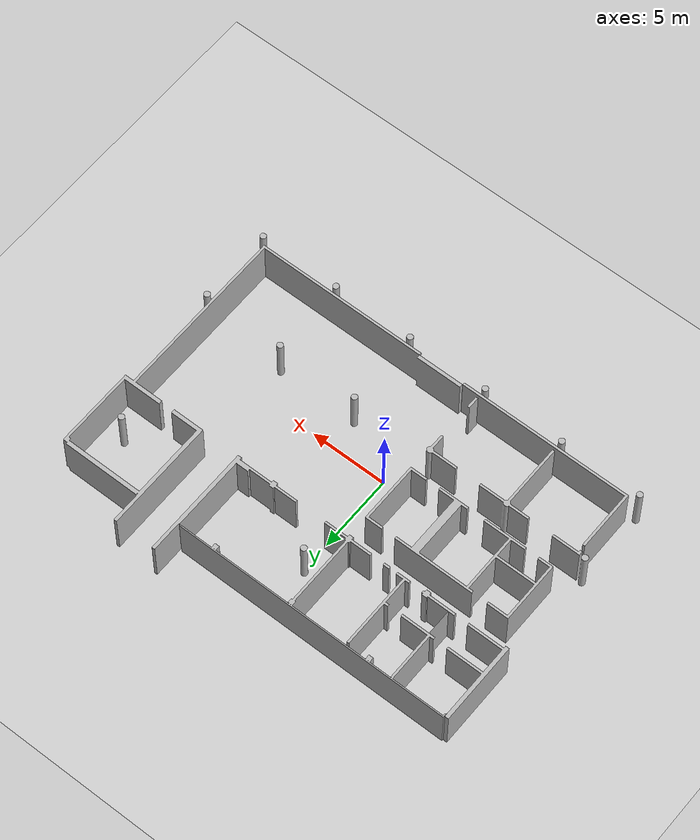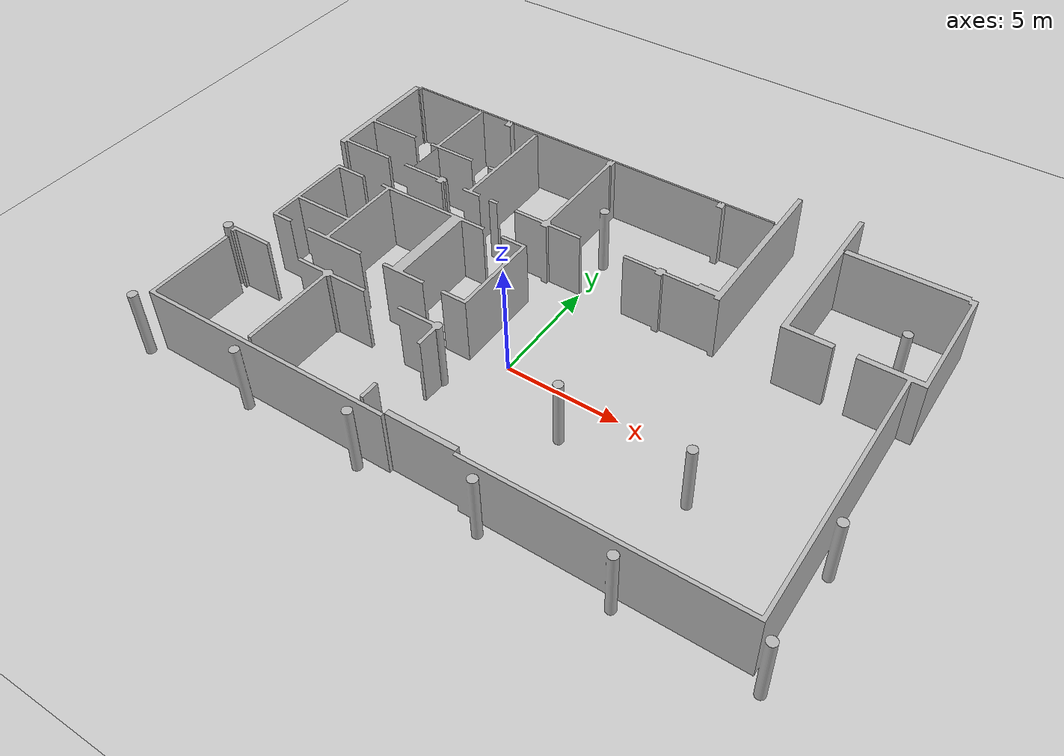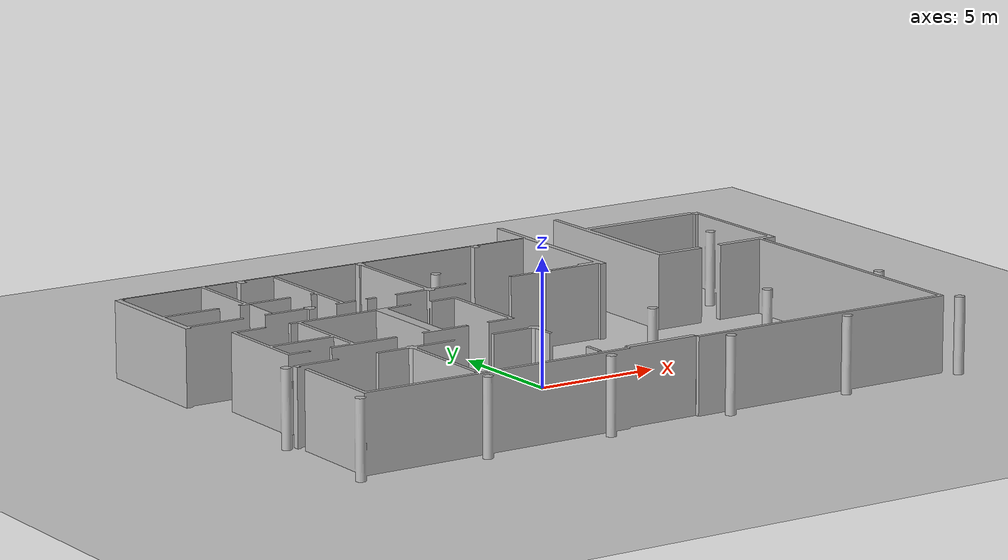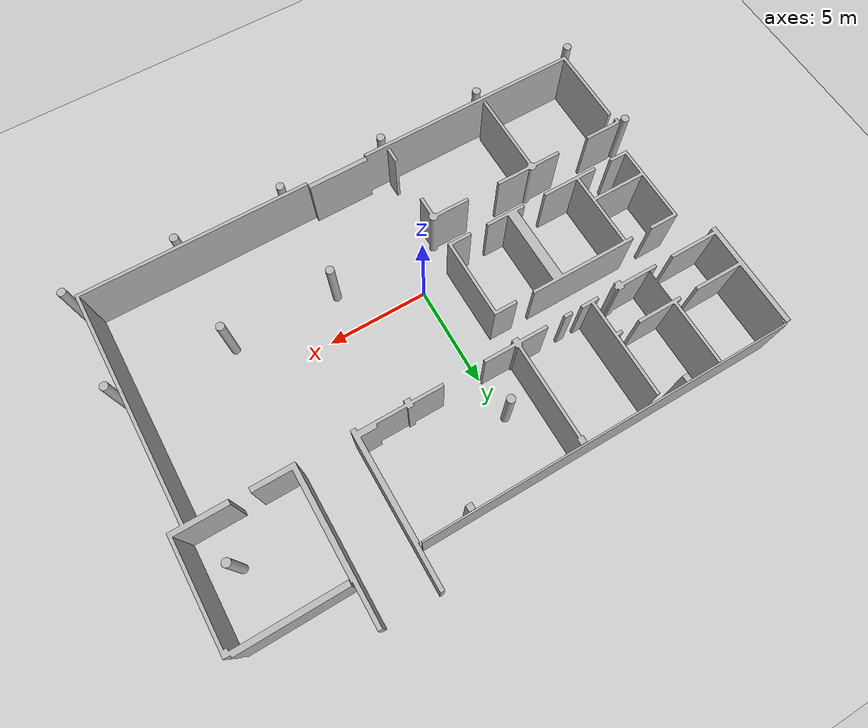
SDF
<?xml version="1.0" ?>
<sdf version="1.5">
  <world name="smart_factory">
    <!-- A global light source -->
    <include>
      <uri>model://sun</uri>
    </include>
    <!-- A ground plane -->
    <include>
      <uri>model://ground_plane</uri>
    </include>

    <model name="smart_factory">
      <static>true</static>
      <link name="smart_factory_link">
        <pose>0 0 0 0 0 0</pose>
        <collision name="smart_factory_collision">
          <geometry>
            <mesh>
              <uri>file://smart_factory.stl</uri>
              <scale>1.0 1.0 1.0</scale>
            </mesh>
          </geometry>
        </collision>
        <visual name="smart_factory_visual">
          <cast_shadows>false</cast_shadows>
          <geometry>
            <mesh>
              <uri>file://smart_factory.stl</uri>
              <scale>1.0 1.0 1.0</scale>
            </mesh>
          </geometry>
        </visual>
      </link>
    </model>

    <gui fullscreen='0'>
      <camera name='user_camera'>
        <pose frame=''>3.56204 1.43222 2.72129 0 0.455643 -2.779</pose>
        <view_controller>orbit</view_controller>
        <projection_type>perspective</projection_type>
      </camera>
    </gui>
  </world>
</sdf>
